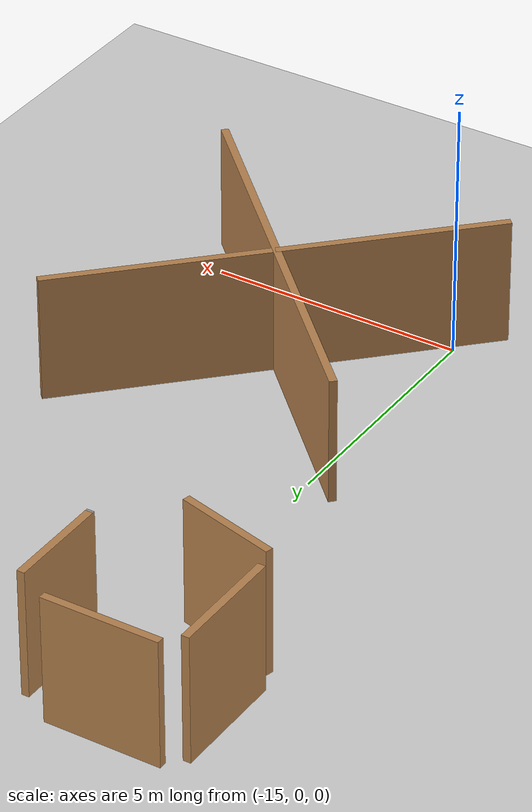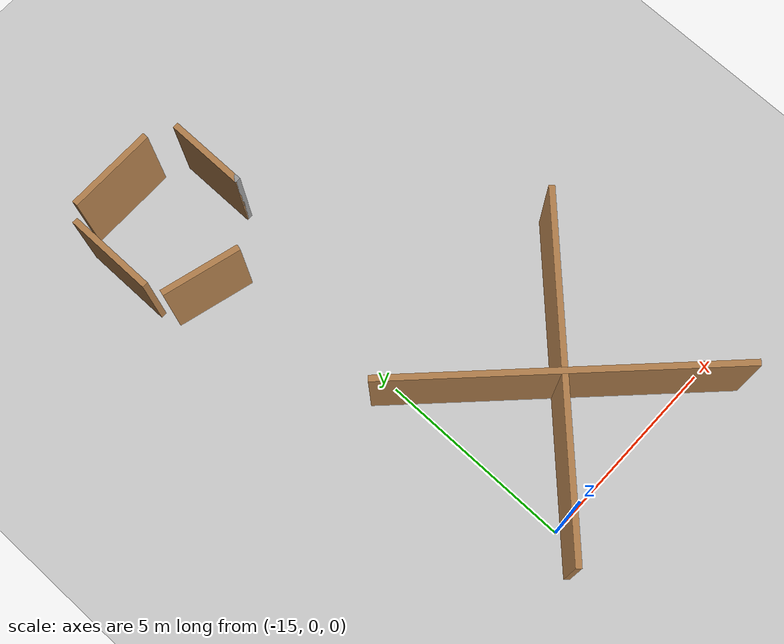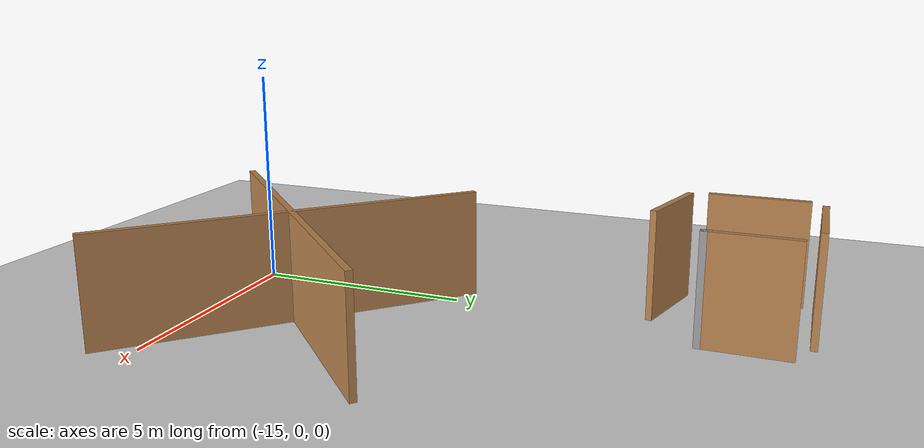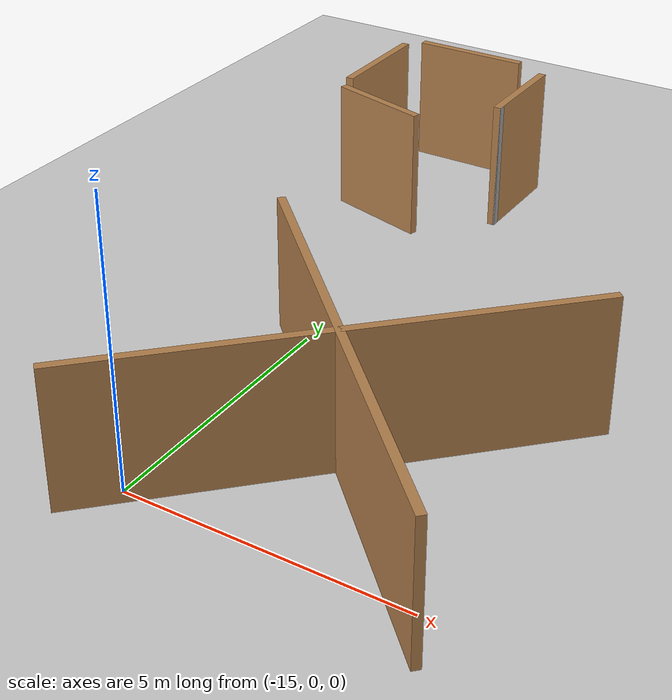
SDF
<sdf version="1.6">
 <world name="default">
  <model name="ground_plane">
   <static>1</static>
   <link name="link">
    <collision name="collision">
     <geometry><plane><normal>0 0 1</normal><size>100 100</size></plane></geometry>
     <surface><friction><ode><mu>100</mu><mu2>50</mu2></ode></friction></surface>
    </collision>
    <visual name="visual">
     <cast_shadows>0</cast_shadows>
     <geometry><plane><normal>0 0 1</normal><size>100 100</size></plane></geometry>
     <material>
      <script><uri>file://media/materials/scripts/gazebo.material</uri><name>Gazebo/Grey</name></script>
     </material>
    </visual>
   </link>
  </model>
  <model name="obs1_10">
   <pose>-15.8331 11.1298 0 0 -0 0</pose>
   <link name="Wall_10">
    <collision name="Wall_10_Collision">
     <geometry><box><size>2 0.15 2.5</size></box></geometry>
     <pose>0 0 1.25 0 -0 0</pose>
    </collision>
    <visual name="Wall_10_Visual">
     <pose>0 0 1.25 0 -0 0</pose>
     <geometry><box><size>2 0.15 2.5</size></box></geometry>
     <material>
      <script><uri>file://media/materials/scripts/gazebo.material</uri><name>Gazebo/Wood</name></script>
      <ambient>1 1 1 1</ambient>
     </material>
    </visual>
    <pose>-0.505188 -1.46687 0 0 0 -0.261799</pose>
   </link>
   <link name="Wall_2">
    <collision name="Wall_2_Collision">
     <geometry><box><size>2.25 0.15 2.5</size></box></geometry>
     <pose>0 0 1.25 0 -0 0</pose>
    </collision>
    <visual name="Wall_2_Visual">
     <pose>0 0 1.25 0 -0 0</pose>
     <geometry><box><size>2.25 0.15 2.5</size></box></geometry>
     <material>
      <script><uri>file://media/materials/scripts/gazebo.material</uri><name>Gazebo/Wood</name></script>
      <ambient>1 1 1 1</ambient>
     </material>
    </visual>
    <pose>-1.58039 0.313508 0 0 0 -1.5708</pose>
   </link>
   <link name="Wall_5">
    <collision name="Wall_5_Collision">
     <geometry><box><size>2.25 0.15 2.5</size></box></geometry>
     <pose>0 0 1.25 0 -0 0</pose>
    </collision>
    <visual name="Wall_5_Visual">
     <pose>0 0 1.25 0 -0 0</pose>
     <geometry><box><size>2.25 0.15 2.5</size></box></geometry>
     <material>
      <script><uri>file://media/materials/scripts/gazebo.material</uri><name>Gazebo/Wood</name></script>
      <ambient>1 1 1 1</ambient>
     </material>
    </visual>
    <pose>-0.185262 1.72313 0 0 -0 0</pose>
   </link>
   <link name="Wall_7">
    <collision name="Wall_7_Collision">
     <geometry><box><size>2 0.15 2.5</size></box></geometry>
     <pose>0 0 1.25 0 -0 0</pose>
    </collision>
    <visual name="Wall_7_Visual">
     <pose>0 0 1.25 0 -0 0</pose>
     <geometry><box><size>2 0.15 2.5</size></box></geometry>
     <material>
      <script><uri>file://media/materials/scripts/gazebo.material</uri><name>Gazebo/Wood</name></script>
      <ambient>1 1 1 1</ambient>
     </material>
    </visual>
    <pose>1.58039 0.398833 0 0 0 -1.5708</pose>
   </link>
   <link name="Wall_8">
    <collision name="Wall_8_Collision">
     <geometry><box><size>0.15 0.15 2.5</size></box></geometry>
     <pose>0 0 1.25 0 -0 0</pose>
    </collision>
    <visual name="Wall_8_Visual">
     <pose>0 0 1.25 0 -0 0</pose>
     <geometry><box><size>0.15 0.15 2.5</size></box></geometry>
     <material>
      <script><uri>file://media/materials/scripts/gazebo.material</uri><name>Gazebo/Grey</name></script>
      <ambient>1 1 1 1</ambient>
     </material>
    </visual>
    <pose>1.58039 -0.526167 0 0 -0 0</pose>
   </link>
   <static>1</static>
  </model>
  <model name="obs3_7">
   <pose>-12.5711 2.16373 0 0 -0 0</pose>
   <link name="Wall_0">
    <collision name="Wall_0_Collision">
     <geometry><box><size>8.63528 0.15 2.5</size></box></geometry>
     <pose>0 0 1.25 0 -0 0</pose>
    </collision>
    <visual name="Wall_0_Visual">
     <pose>0 0 1.25 0 -0 0</pose>
     <geometry><box><size>8.63528 0.15 2.5</size></box></geometry>
     <material>
      <script><uri>file://media/materials/scripts/gazebo.material</uri><name>Gazebo/Wood</name></script>
      <ambient>1 1 1 1</ambient>
     </material>
    </visual>
    <pose>0 0 0 0 0 -0.785398</pose>
   </link>
   <link name="Wall_2">
    <collision name="Wall_2_Collision">
     <geometry><box><size>8.63528 0.15 2.5</size></box></geometry>
     <pose>0 0 1.25 0 -0 0</pose>
    </collision>
    <visual name="Wall_2_Visual">
     <pose>0 0 1.25 0 -0 0</pose>
     <geometry><box><size>8.63528 0.15 2.5</size></box></geometry>
     <material>
      <script><uri>file://media/materials/scripts/gazebo.material</uri><name>Gazebo/Wood</name></script>
      <ambient>1 1 1 1</ambient>
     </material>
    </visual>
    <pose>0 0 0 0 0 -2.35619</pose>
   </link>
   <static>1</static>
  </model>
 </world>
</sdf>
